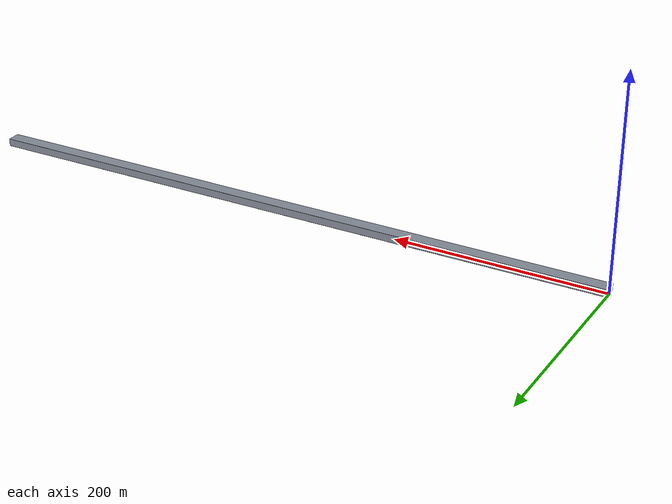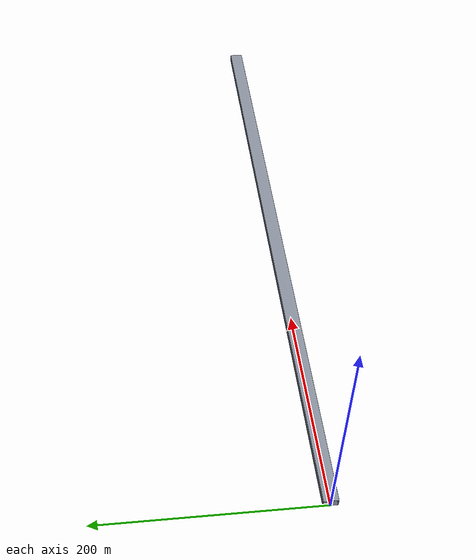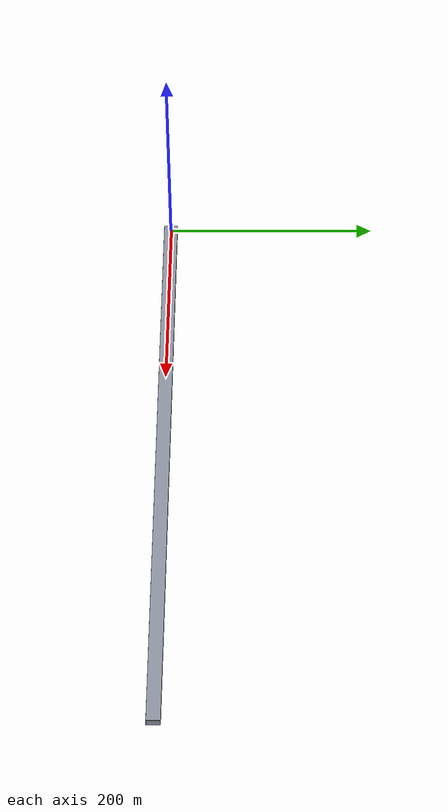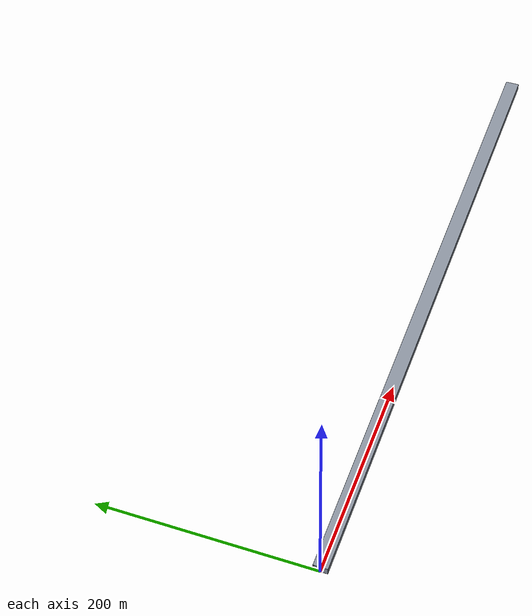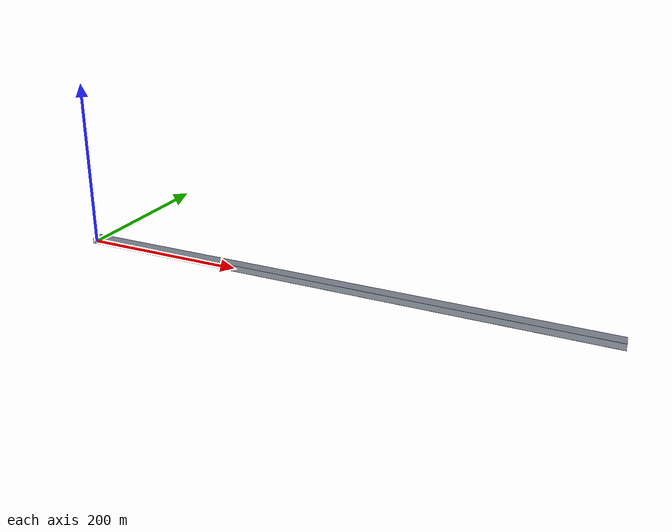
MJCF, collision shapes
<mujoco model="tunnel">
  <include file="mujoco_menagerie/skydio_x2/x2.xml"/>

  <statistic extent="18" center="60 0 3"/>

  <option timestep="0.002" density="1.2" viscosity="1.8e-5"/>
  <visual>
    <global fovy="50" offwidth="1400" offheight="900"/>
    <headlight diffuse=".95 .95 .95" ambient=".60 .60 .62"/>
    <map znear="0.0025" zfar="3.0"/>
  </visual>

  <asset>
    <texture type="skybox" builtin="gradient" rgb1=".16 .18 .24" rgb2=".05 .06 .09" width="512" height="512"/>
    <texture name="grid" type="2d" builtin="checker" rgb1=".30 .32 .36" rgb2=".38 .40 .45" width="512" height="512"/>
    <material name="grid" texture="grid" texrepeat="150 6" reflectance="0"/>
    <material name="wall"  rgba=".52 .55 .60 1"/>
    <material name="side"  rgba=".95 .60 .10 1"/>
    <material name="over"  rgba=".20 .70 .85 1"/>
    <material name="under" rgba=".70 .35 .90 1"/>
    <material name="car"   rgba=".95 .15 .10 1"/>
  </asset>

  <worldbody>
    <light pos="0 0 5.5" dir="0 0 -1" directional="true" diffuse=".70 .70 .72"/>
    <light pos="11 0 6.4" dir="0 0 -1" diffuse=".45 .45 .48"/>
    <light pos="33 0 6.4" dir="0 0 -1" diffuse=".45 .45 .48"/>
    <light pos="55 0 6.4" dir="0 0 -1" diffuse=".45 .45 .48"/>
    <light pos="77 0 6.4" dir="0 0 -1" diffuse=".45 .45 .48"/>
    <light pos="99 0 6.4" dir="0 0 -1" diffuse=".45 .45 .48"/>
    <light pos="121 0 6.4" dir="0 0 -1" diffuse=".45 .45 .48"/>
    <light pos="143 0 6.4" dir="0 0 -1" diffuse=".45 .45 .48"/>
    <light pos="165 0 6.4" dir="0 0 -1" diffuse=".45 .45 .48"/>
    <light pos="187 0 6.4" dir="0 0 -1" diffuse=".45 .45 .48"/>
    <light pos="209 0 6.4" dir="0 0 -1" diffuse=".45 .45 .48"/>
    <light pos="231 0 6.4" dir="0 0 -1" diffuse=".45 .45 .48"/>
    <light pos="253 0 6.4" dir="0 0 -1" diffuse=".45 .45 .48"/>
    <light pos="275 0 6.4" dir="0 0 -1" diffuse=".45 .45 .48"/>
    <light pos="297 0 6.4" dir="0 0 -1" diffuse=".45 .45 .48"/>
    <light pos="319 0 6.4" dir="0 0 -1" diffuse=".45 .45 .48"/>
    <light pos="341 0 6.4" dir="0 0 -1" diffuse=".45 .45 .48"/>
    <light pos="363 0 6.4" dir="0 0 -1" diffuse=".45 .45 .48"/>
    <light pos="385 0 6.4" dir="0 0 -1" diffuse=".45 .45 .48"/>
    <light pos="407 0 6.4" dir="0 0 -1" diffuse=".45 .45 .48"/>
    <light pos="429 0 6.4" dir="0 0 -1" diffuse=".45 .45 .48"/>
    <light pos="451 0 6.4" dir="0 0 -1" diffuse=".45 .45 .48"/>
    <light pos="473 0 6.4" dir="0 0 -1" diffuse=".45 .45 .48"/>
    <light pos="495 0 6.4" dir="0 0 -1" diffuse=".45 .45 .48"/>
    <light pos="517 0 6.4" dir="0 0 -1" diffuse=".45 .45 .48"/>
    <light pos="539 0 6.4" dir="0 0 -1" diffuse=".45 .45 .48"/>
    <light pos="561 0 6.4" dir="0 0 -1" diffuse=".45 .45 .48"/>
    <light pos="583 0 6.4" dir="0 0 -1" diffuse=".45 .45 .48"/>
    <light pos="605 0 6.4" dir="0 0 -1" diffuse=".45 .45 .48"/>
    <light pos="627 0 6.4" dir="0 0 -1" diffuse=".45 .45 .48"/>
    <geom name="floor_t" type="box" material="grid" size="310.0 6.5 .1" pos="310.0 0 -.1"/>
    <geom name="ceil_t" type="box" material="wall" size="310.0 6.5 .1" pos="310.0 0 7.0"/>
    <geom name="wallL" type="box" material="wall" size="310.0 .1 3.5" pos="310.0 6.5 3.5"/>
    <geom name="wallR" type="box" material="wall" size="310.0 .1 3.5" pos="310.0 -6.5 3.5"/>
    <geom name="ob0" type="box" material="side" size=".35 3.6 2.825" pos="70.0 2.9 4.175000000000001"/>
    <geom name="ob1" type="box" material="under" size=".35 6.5 2.0" pos="104.0 0 5.0"/>
    <geom name="ob2" type="box" material="side" size=".35 3.6 2.825" pos="138.0 -2.9 4.175000000000001"/>
    <geom name="ob3" type="box" material="over" size=".35 6.5 1.125" pos="172.0 0 2.475"/>
    <geom name="ob4" type="box" material="side" size=".35 3.6 2.825" pos="206.0 -2.9 4.175000000000001"/>
    <geom name="ob5" type="box" material="under" size=".35 6.5 2.0" pos="240.0 0 5.0"/>
    <geom name="ob6" type="box" material="side" size=".35 3.6 2.825" pos="274.0 2.9 4.175000000000001"/>
    <geom name="ob7" type="box" material="over" size=".35 6.5 1.125" pos="308.0 0 2.475"/>
    <geom name="ob8" type="box" material="side" size=".35 3.6 2.825" pos="342.0 2.9 4.175000000000001"/>
    <geom name="ob9" type="box" material="under" size=".35 6.5 2.0" pos="376.0 0 5.0"/>
    <geom name="ob10" type="box" material="side" size=".35 3.6 2.825" pos="410.0 -2.9 4.175000000000001"/>
    <geom name="ob11" type="box" material="over" size=".35 6.5 1.125" pos="444.0 0 2.475"/>
    <geom name="ob12" type="box" material="side" size=".35 3.6 2.825" pos="478.0 -2.9 4.175000000000001"/>
    <geom name="ob13" type="box" material="under" size=".35 6.5 2.0" pos="512.0 0 5.0"/>
    <geom name="ob14" type="box" material="side" size=".35 3.6 2.825" pos="546.0 2.9 4.175000000000001"/>
    <body name="car" mocap="true" pos="20 0 .55">
      <geom name="car_geom" type="box" material="car" size="1.1 .6 .55"/>
      <geom name="car_fin" type="box" material="car" size=".1 .1 .35" pos="-.6 0 .9"/>
    </body>
  </worldbody>
</mujoco>

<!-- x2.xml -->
<mujoco model="Skydio X2">
  <compiler inertiafromgeom="true" angle="degree" autolimits="true" assetdir="assets"/>

  <option timestep=".005" iterations="50" tolerance="1e-16" solver="Newton" jacobian="dense" cone="pyramidal" density="1.225" viscosity="1.8e-5">
    <flag contact = "enable"/>
  </option>

  <default>
    <default class="x2">
      <geom mass="0"/>
      <motor ctrlrange="0 200"/>
      <mesh scale="0.01 0.01 0.01"/>
      <default class="visual">
        <geom group="2" type="mesh" contype="0" conaffinity="0"/>
      </default>
      <default class="collision">
        <geom group="3" type="box"/>
        <default class="rotor">
          <geom type="ellipsoid" size=".13 .13 .01"/>
        </default>
      </default>
      <site group="5"/>
    </default>
  </default>

  <asset>
    <texture type="2d" file="X2_lowpoly_texture_SpinningProps_1024.png"/>
    <material name="phong3SG" texture="X2_lowpoly_texture_SpinningProps_1024"/>
    <material name="invisible" rgba="0 0 0 0"/>

    <mesh class="x2" file="X2_lowpoly.obj"/>
    <mesh name="BASE" file="stls/Base.STL"/>
    <mesh name="LINK1" file="stls/Link1.STL"/>
    <mesh name="LINK2" file="stls/Link2.STL"/>
    <mesh name="LINK3" file="stls/Link3.STL"/>
    <mesh name="DYNM" file="stls/XH430.STL"/>
  </asset>

  <worldbody>
    <light name="spotlight" mode="targetbodycom" target="x2" pos="0 -1 2"/>
    <body name="x2" pos="0 0 0.7" childclass="x2">
      <freejoint/>
      <camera name="track" pos="-1 0 .5" xyaxes="0 -1 0 1 0 2" mode="trackcom"/>
      <site name="imu" pos="0 0 .02"/>
      <geom material="phong3SG" mesh="X2_lowpoly" class="visual" quat="0 0 1 1"/>
      <geom class="collision" size=".06 .027 .02" pos=".04 0 .02"/>
      <geom class="collision" size=".06 .027 .02" pos=".04 0 .06"/>
      <geom class="collision" size=".05 .027 .02" pos="-.07 0 .065"/>
      <geom class="collision" size=".023 .017 .01" pos="-.137 .008 .065" quat="1 0 0 1"/>
      <geom name="rotor1" class="rotor" pos="-.14 -.18 .05" mass=".25"/>
      <geom name="rotor2" class="rotor" pos="-.14 .18 .05" mass=".25"/>
      <geom name="rotor3" class="rotor" pos=".14 .18 .08" mass=".25"/>
      <geom name="rotor4" class="rotor" pos=".14 -.18 .08" mass=".25"/>
      <geom size=".16 .04 .02" pos="0 0 0.02" type="ellipsoid" mass=".325" class="visual" material="invisible"/>
      <site name="thrust1" pos="-.14 -.18 .05"/>
      <site name="thrust2" pos="-.14 .18 .05"/>
      <site name="thrust3" pos=".14 .18 .08"/>
      <site name="thrust4" pos=".14 -.18 .08"/>
    </body>
  </worldbody>

  <actuator>
    <motor class="x2" name="thrust1" site="thrust1" gear="0 0 1 0 0 -.0201"/>
    <motor class="x2" name="thrust2" site="thrust2" gear="0 0 1 0 0  .0201"/>
    <motor class="x2" name="thrust3" site="thrust3" gear="0 0 1 0 0  .0201"/>
    <motor class="x2" name="thrust4" site="thrust4" gear="0 0 1 0 0 -.0201"/>
  </actuator>

  <sensor>
    <gyro name="body_gyro" site="imu"/>
    <accelerometer name="body_linacc" site="imu"/>
    <framequat name="body_quat" objtype="site" objname="imu"/>
  </sensor>

  <keyframe>
    <key name="hover" qpos="0 0 .3 1 0 0 0" ctrl="3.2495625 3.2495625 3.2495625 3.2495625"/>
  </keyframe>
</mujoco>
